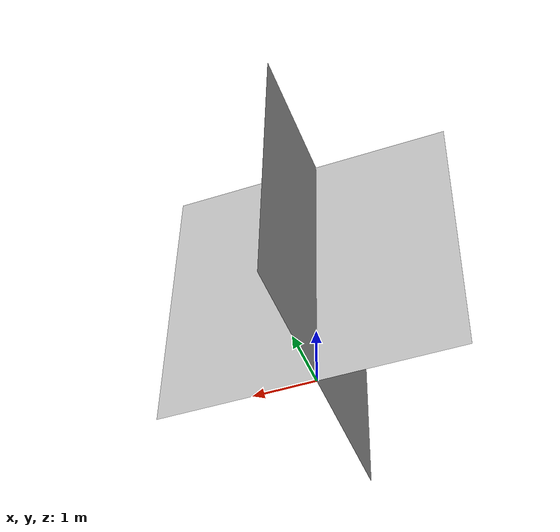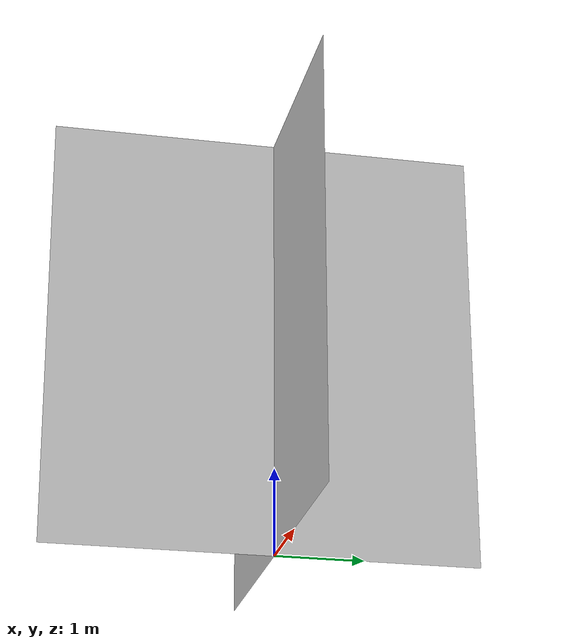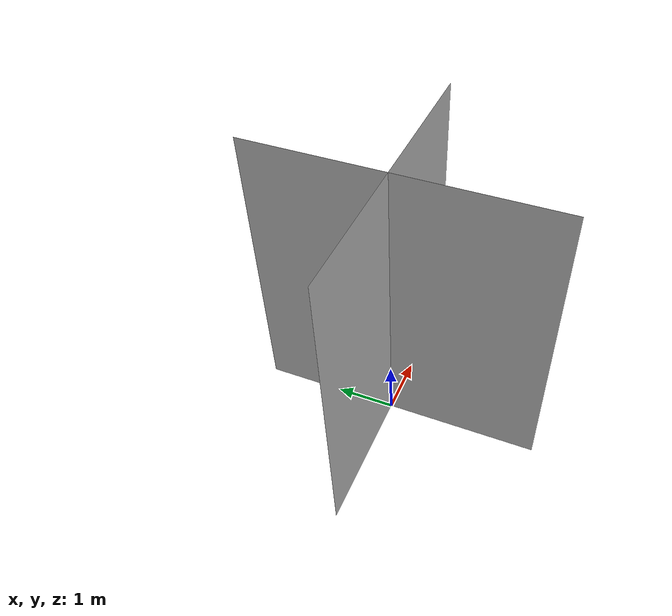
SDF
<?xml version="1.0"?>
<sdf version="1.3">
  <model name="Banksea">
    <static>true</static>
    <link name="link">
      <collision name="collision">
      </collision>
      <visual name="visual">
        <geometry>
          <mesh>
            <uri>model://Banksea/meshes/Banksea.dae</uri>
          </mesh>
        </geometry>
      </visual>
    </link>
  </model>
</sdf>
